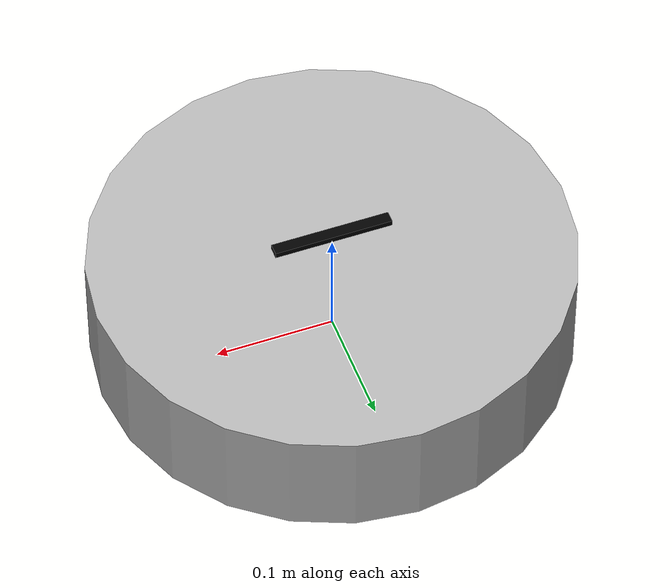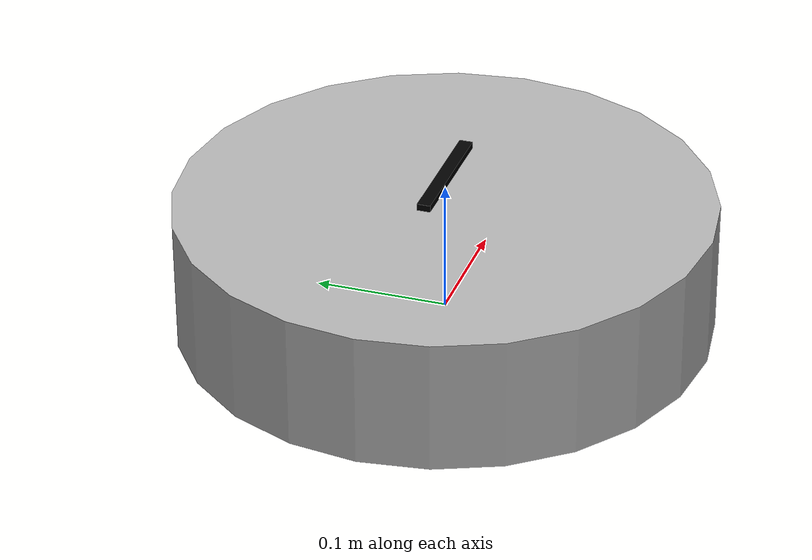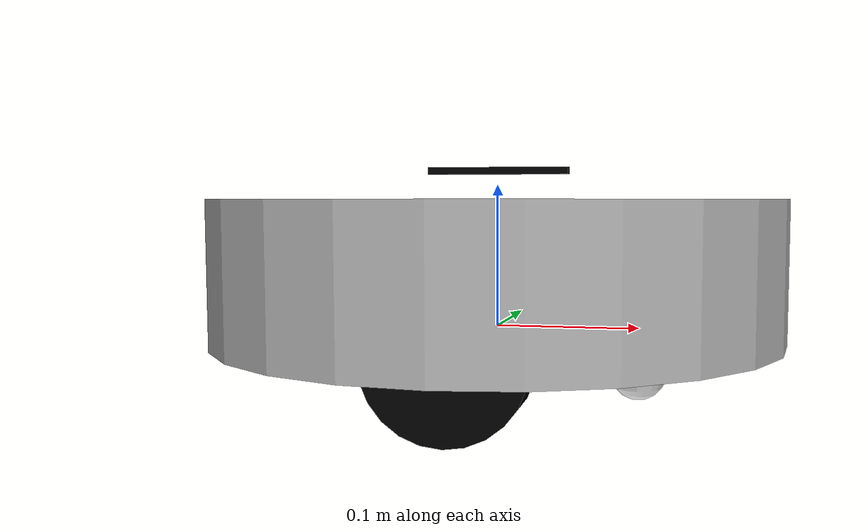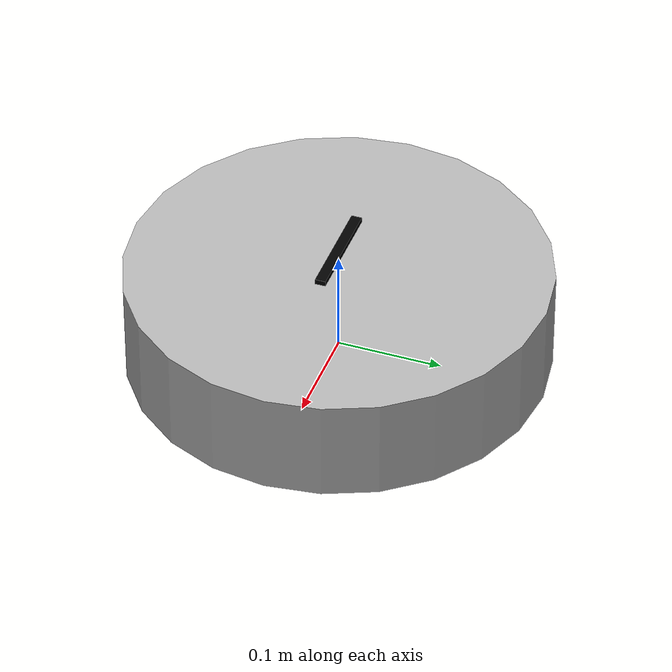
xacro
<?xml version="1.0" ?>
<robot name="vacuum_robot" xmlns:xacro="http://ros.org/wiki/xacro">

    <xacro:include filename="$(find robot_description)/urdf/gazebo.urdf.xacro" />

    <xacro:property name="chassis_radius" value="0.2"/> <!-- Радиус корпуса -->
    <xacro:property name="chassis_height" value="0.1"/> <!-- Высота корпуса -->
    <xacro:property name="wheel_radius" value="0.05"/>
    <xacro:property name="wheel_thickness" value="0.03"/>
    <xacro:property name="wheel_mass" value="0.2"/>
    <xacro:property name="wheel_offset_x" value="0.2"/>
    <xacro:property name="wheel_offset_y" value="0.15"/>
    <xacro:property name="wheel_offset_z" value="0.01"/>
    <xacro:property name="caster_wheel_radius" value="0.02"/>
    <xacro:property name="caster_wheel_mass" value="0.05"/>
    <xacro:property name="caster_wheel_offset_x" value="0.1"/>
    <xacro:property name="caster_wheel_offset_z" value="${wheel_offset_z - wheel_radius + caster_wheel_radius}"/>
    <xacro:property name="mass" value="1.5"/> <!-- Масса корпуса -->

    <material name="white">
        <color rgba="1 1 1 1" />
    </material>

    <material name="gray">
        <color rgba="0.7 0.7 0.7 1"/>
    </material>

    <material name="black">
        <color rgba="0 0 0 1"/>
    </material>

    <link name="base_link">
    </link>

    <link name="base_footprint">
    </link>

    <joint name="base_footprint_joint" type="fixed">
        <parent link="base_link"/>
        <child link="base_footprint"/>
        <origin xyz="0 0 -0.1" rpy="0 0 0"/>
    </joint>

    <joint name="chassis_joint" type="fixed">
        <parent link="base_link"/>
        <child link="chassis"/>
        <origin xyz="0 0 ${-wheel_offset_z}"/>
    </joint>

    <link name="chassis">
        <inertial>
            <origin xyz="0 0 ${chassis_height / 2}" rpy="0 0 0"/>
            <mass value="${mass}" />
            <inertia ixx="${(1/2) * mass * (chassis_radius * chassis_radius)}"
                     ixy="0.0" ixz="0.0"
                     iyy="${(1/2) * mass * (chassis_radius * chassis_radius)}"
                     iyz="0.0"
                     izz="${(1/2) * mass * (chassis_radius * chassis_radius)}" />
        </inertial>
        <visual>
            <origin xyz="0 0 ${chassis_height / 2}"/>
            <geometry>
                <cylinder radius="${chassis_radius}" length="${chassis_height}"/> <!-- Цилиндр для корпуса -->
            </geometry>
            <material name="gray"/>
        </visual>
        <collision>
            <origin xyz="0 0 ${chassis_height / 2}"/>
            <geometry>
                <cylinder radius="${chassis_radius}" length="${chassis_height}"/> <!-- Цилиндр для коллизий -->
            </geometry>
        </collision>
    </link>

    <gazebo reference="chassis">
        <material>Gazebo/Gray</material>
    </gazebo>

    <joint name="left_wheel_joint" type="continuous">
        <parent link="base_link"/>
        <child link="left_wheel"/>
        <origin xyz="0 ${wheel_offset_y} 0" rpy="-${pi/2} 0 0" />
        <axis xyz="0 0 1"/>
    </joint>

    <link name="left_wheel">
        <visual>
            <geometry>
                <cylinder radius="${wheel_radius}" length="${wheel_thickness}"/>
            </geometry>
            <material name="black"/>
        </visual>
        <collision>
            <geometry>
                <cylinder radius="${wheel_radius}" length="${wheel_thickness}"/>
            </geometry>
        </collision>
        <inertial>
            <origin xyz="0 0 0" rpy="0 0 0"/>
            <mass value="${wheel_mass}" />
            <inertia ixx="${(1/12) * wheel_mass * (3*wheel_radius*wheel_radius + wheel_thickness*wheel_thickness)}"
                     ixy="0.0" ixz="0.0"
                     iyy="${(1/12) * wheel_mass * (3*wheel_radius*wheel_radius + wheel_thickness*wheel_thickness)}"
                     iyz="0.0"
                     izz="${(1/2) * wheel_mass * (wheel_radius*wheel_radius)}" />
        </inertial>
    </link>

    <gazebo reference="left_wheel">
        <material>Gazebo/Black</material>
    </gazebo>

    <joint name="right_wheel_joint" type="continuous">
        <parent link="base_link"/>
        <child link="right_wheel"/>
        <origin xyz="0 ${-wheel_offset_y} 0" rpy="${pi/2} 0 0" />
        <axis xyz="0 0 -1"/>
    </joint>

    <link name="right_wheel">
        <visual>
            <geometry>
                <cylinder radius="${wheel_radius}" length="${wheel_thickness}"/>
            </geometry>
            <material name="black"/>
        </visual>
        <collision>
            <geometry>
                <cylinder radius="${wheel_radius}" length="${wheel_thickness}"/>
            </geometry>
        </collision>
        <inertial>
            <origin xyz="0 0 0" rpy="0 0 0"/>
            <mass value="${wheel_mass}" />
            <inertia ixx="${(1/12) * wheel_mass * (3*wheel_radius*wheel_radius + wheel_thickness*wheel_thickness)}"
                     ixy="0.0" ixz="0.0"
                     iyy="${(1/12) * wheel_mass * (3*wheel_radius*wheel_radius + wheel_thickness*wheel_thickness)}"
                     iyz="0.0"
                     izz="${(1/2) * wheel_mass * (wheel_radius*wheel_radius)}" />
        </inertial>
    </link>

    <gazebo reference="right_wheel">
        <material>Gazebo/Black</material>
    </gazebo>

    <!-- Caster Wheel -->
    <joint name="caster_wheel_joint" type="fixed">
        <parent link="chassis"/>
        <child link="caster_wheel"/>
        <origin xyz="${caster_wheel_offset_x} 0 ${caster_wheel_offset_z}"/>
    </joint>

    <link name="caster_wheel">
        <visual>
            <geometry>
                <sphere radius="${caster_wheel_radius}"/>
            </geometry>
            <material name="white"/>
        </visual>
        <collision>
            <geometry>
                <sphere radius="${caster_wheel_radius}"/>
            </geometry>
        </collision>
        <inertial>
            <origin xyz="0 0 0" rpy="0 0 0"/>
            <mass value="${caster_wheel_mass}" />
            <inertia ixx="${(2/5) * caster_wheel_mass * (caster_wheel_radius*caster_wheel_radius)}"
                     ixy="0.0" ixz="0.0"
                     iyy="${(2/5) * caster_wheel_mass * (caster_wheel_radius*caster_wheel_radius)}"
                     iyz="0.0"
                     izz="${(2/5) * caster_wheel_mass * (caster_wheel_radius*caster_wheel_radius)}" />
        </inertial>
    </link>

    <gazebo reference="caster_wheel">
        <material>Gazebo/White</material>
        <mu1 value="0.001"/>
        <mu2 value="0.001"/>
    </gazebo>

    <!-- Blade -->
    <joint name="blade_joint" type="fixed">
        <parent link="chassis"/>
        <child link="blade"/>
        <origin xyz="0 0 ${chassis_height + 0.02}"/>
    </joint>

    <link name="blade">
        <visual>
            <geometry>
                <box size="0.1 0.01 0.005"/>
            </geometry>
            <material name="black"/>
        </visual>
        <collision>
            <geometry>
                <box size="0.1 0.01 0.005"/>
            </geometry>
        </collision>
        <inertial>
            <mass value="0.1"/>
            <inertia ixx="0.0001" ixy="0.0" ixz="0.0"
                     iyy="0.0001" iyz="0.0"
                     izz="0.0001"/>
        </inertial>
    </link>

    <gazebo reference="blade">
        <material>Gazebo/Black</material>
    </gazebo>

</robot>
